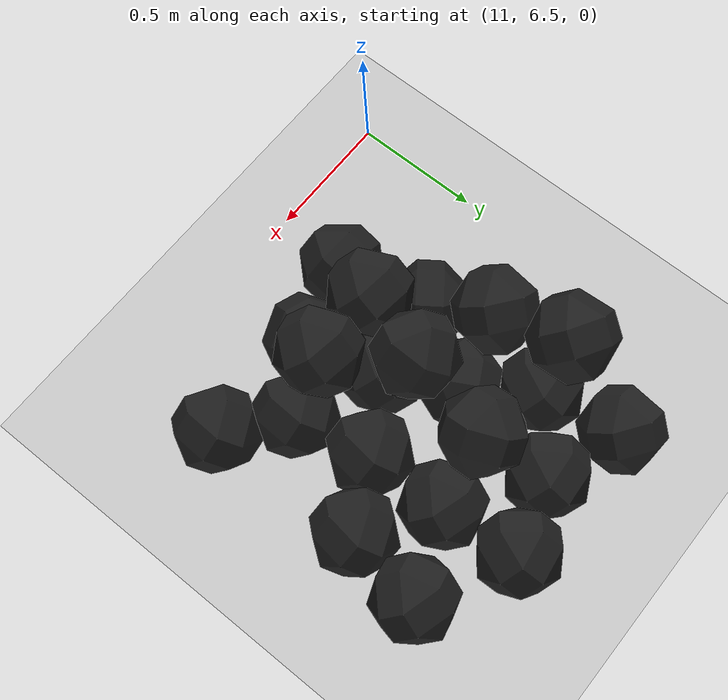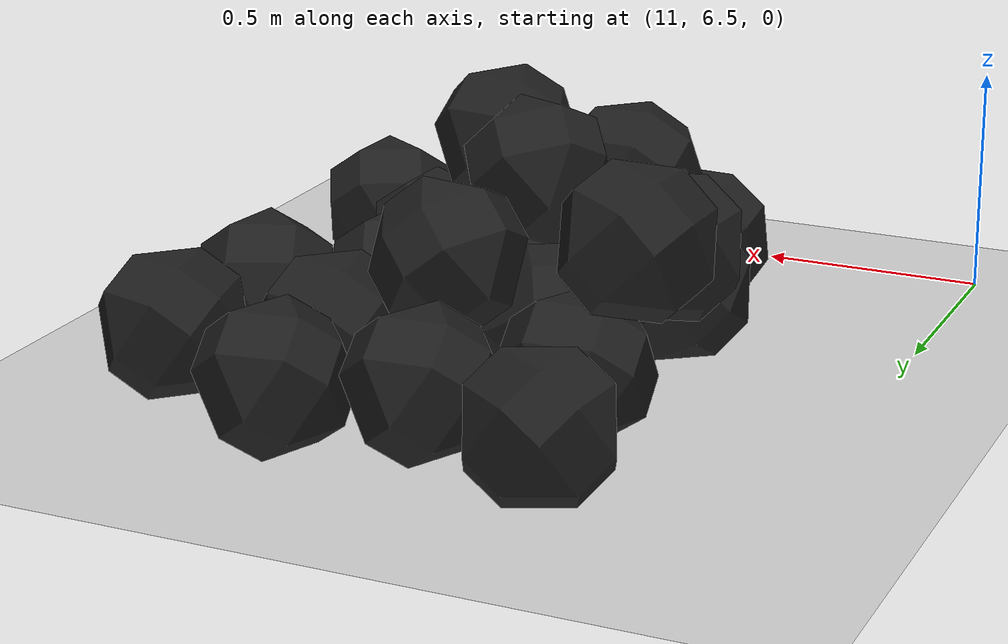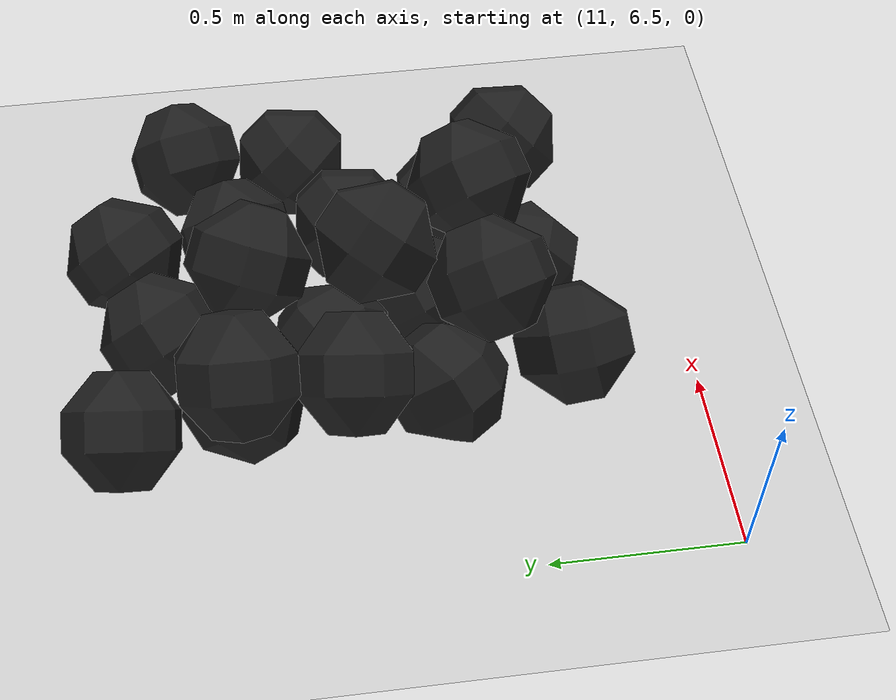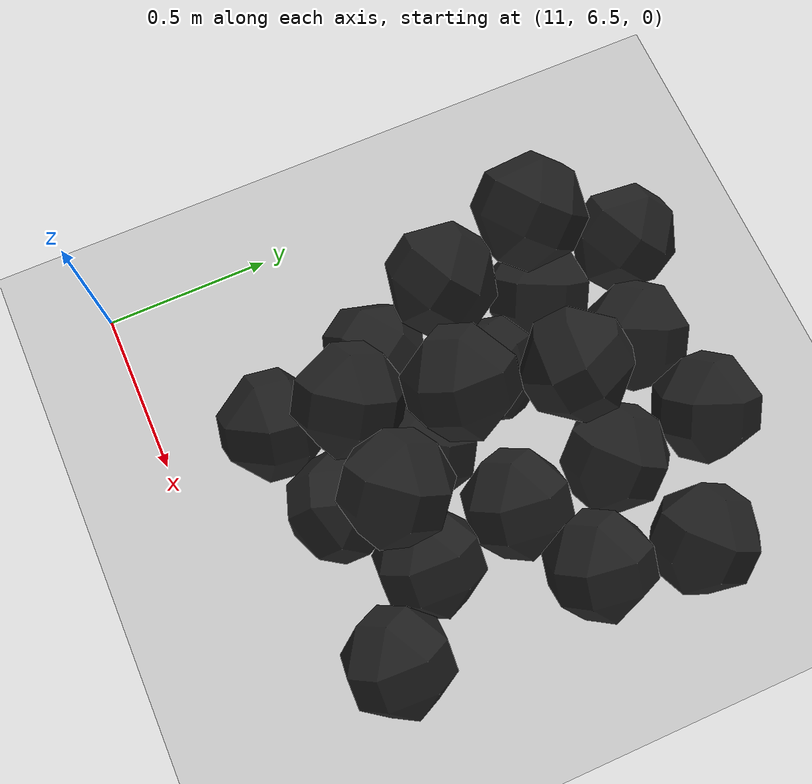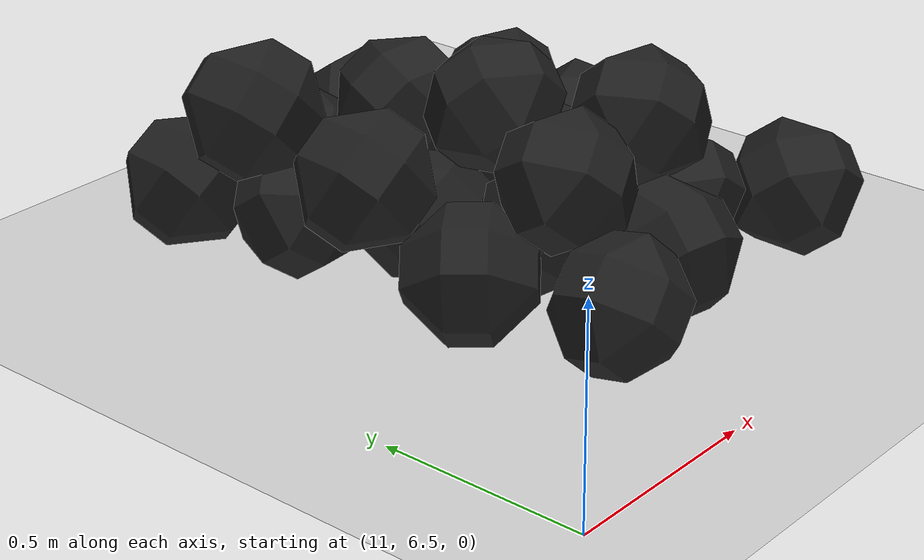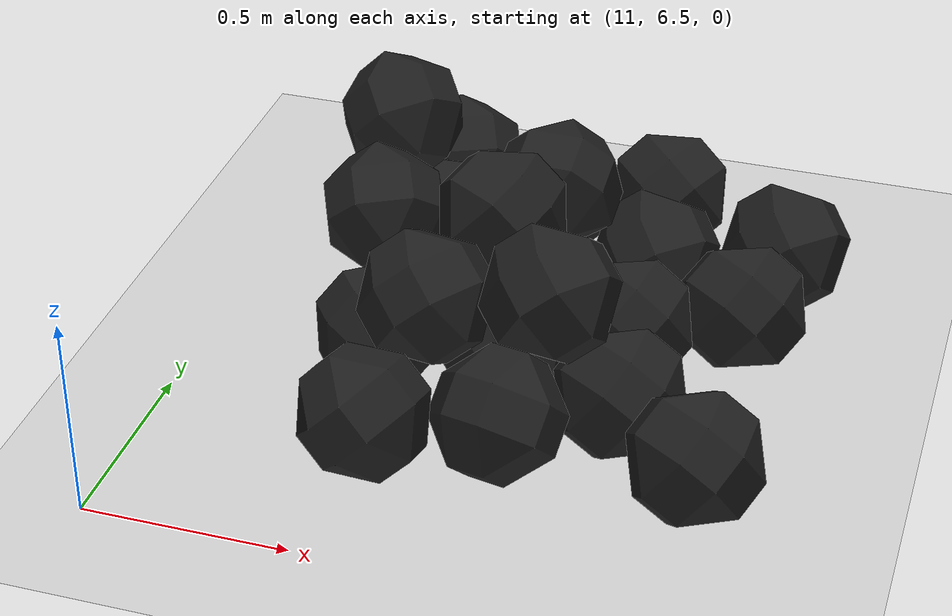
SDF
<sdf version="1.7">
 <world name="default">
  <model name="ground_plane">
   <static>1</static>
   <link name="link">
    <collision name="collision">
     <geometry><plane><normal>0 0 1</normal><size>100 100</size></plane></geometry>
     <surface><friction><ode><mu>100</mu><mu2>50</mu2></ode></friction></surface>
    </collision>
    <visual name="visual">
     <cast_shadows>0</cast_shadows>
     <geometry><plane><normal>0 0 1</normal><size>100 100</size></plane></geometry>
     <material>
      <script><uri>file://media/materials/scripts/gazebo.material</uri><name>Gazebo/Grey</name></script>
     </material>
    </visual>
   </link>
  </model>
  <model name="haoduomiantiaa_2">
   <link name="link_0">
    <inertial>
     <mass>0.2</mass>
     <inertia>
      <ixx>0.166667</ixx>
      <ixy>0</ixy>
      <ixz>0</ixz>
      <iyy>0.166667</iyy>
      <iyz>0</iyz>
      <izz>0.166667</izz>
     </inertia>
    </inertial>
    <visual name="visual">
     <geometry>
      <mesh>
       <uri>/home/lihaoyang/catkin_ws/src/pudong_gazebo/world/stl/haoduomianti.stl</uri>
       <scale>1 1 1</scale>
      </mesh>
     </geometry>
     <material>
      <lighting>1</lighting>
      <script><uri>file://media/materials/scripts/gazebo.material</uri><name>Gazebo/Black</name></script>
      <shader type="pixel"><normal_map>__default__</normal_map></shader>
      <ambient>0.3 0.3 0.3 1</ambient>
      <diffuse>0.7 0.7 0.7 1</diffuse>
      <specular>0.01 0.01 0.01 1</specular>
      <emissive>0 0 0 1</emissive>
     </material>
    </visual>
    <collision name="collision">
     <geometry>
      <mesh>
       <uri>/home/lihaoyang/catkin_ws/src/pudong_gazebo/world/stl/haoduomianti.stl</uri>
       <scale>1 1 1</scale>
      </mesh>
     </geometry>
     <surface>
      <friction>
       <ode><mu>1</mu><mu2>1</mu2><fdir1>0 0 0</fdir1><slip1>0</slip1><slip2>0</slip2></ode>
       <torsional>
        <coefficient>1</coefficient>
        <patch_radius>0</patch_radius>
        <surface_radius>0</surface_radius>
        <use_patch_radius>1</use_patch_radius>
        <ode><slip>0</slip></ode>
       </torsional>
      </friction>
      <bounce><restitution_coefficient>0</restitution_coefficient><threshold>1e+06</threshold></bounce>
      <contact>
       <collide_without_contact>0</collide_without_contact>
       <collide_without_contact_bitmask>1</collide_without_contact_bitmask>
       <collide_bitmask>1</collide_bitmask>
       <ode>
        <soft_cfm>0</soft_cfm>
        <soft_erp>0.2</soft_erp>
        <kp>1e+13</kp>
        <kd>1</kd>
        <max_vel>0.01</max_vel>
        <min_depth>0</min_depth>
       </ode>
       <bullet>
        <split_impulse>1</split_impulse>
        <split_impulse_penetration_threshold>-0.01</split_impulse_penetration_threshold>
        <soft_cfm>0</soft_cfm>
        <soft_erp>0.2</soft_erp>
        <kp>1e+13</kp>
        <kd>1</kd>
       </bullet>
      </contact>
     </surface>
    </collision>
   </link>
   <static>0</static>
   <pose>11.3927 7.29702 -0.074683 1.5149 -0.784614 0.669858</pose>
  </model>
  <model name="haoduomiantiaa_4">
   <link name="link_0">
    <inertial>
     <mass>0.2</mass>
     <inertia>
      <ixx>0.166667</ixx>
      <ixy>0</ixy>
      <ixz>0</ixz>
      <iyy>0.166667</iyy>
      <iyz>0</iyz>
      <izz>0.166667</izz>
     </inertia>
    </inertial>
    <visual name="visual">
     <geometry>
      <mesh>
       <uri>/home/lihaoyang/catkin_ws/src/pudong_gazebo/world/stl/haoduomianti.stl</uri>
       <scale>1 1 1</scale>
      </mesh>
     </geometry>
     <material>
      <lighting>1</lighting>
      <script><uri>file://media/materials/scripts/gazebo.material</uri><name>Gazebo/Black</name></script>
      <shader type="pixel"><normal_map>__default__</normal_map></shader>
      <ambient>0.3 0.3 0.3 1</ambient>
      <diffuse>0.7 0.7 0.7 1</diffuse>
      <specular>0.01 0.01 0.01 1</specular>
      <emissive>0 0 0 1</emissive>
     </material>
    </visual>
    <collision name="collision">
     <geometry>
      <mesh>
       <uri>/home/lihaoyang/catkin_ws/src/pudong_gazebo/world/stl/haoduomianti.stl</uri>
       <scale>1 1 1</scale>
      </mesh>
     </geometry>
     <surface>
      <friction>
       <ode><mu>1</mu><mu2>1</mu2><fdir1>0 0 0</fdir1><slip1>0</slip1><slip2>0</slip2></ode>
       <torsional>
        <coefficient>1</coefficient>
        <patch_radius>0</patch_radius>
        <surface_radius>0</surface_radius>
        <use_patch_radius>1</use_patch_radius>
        <ode><slip>0</slip></ode>
       </torsional>
      </friction>
      <bounce><restitution_coefficient>0</restitution_coefficient><threshold>1e+06</threshold></bounce>
      <contact>
       <collide_without_contact>0</collide_without_contact>
       <collide_without_contact_bitmask>1</collide_without_contact_bitmask>
       <collide_bitmask>1</collide_bitmask>
       <ode>
        <soft_cfm>0</soft_cfm>
        <soft_erp>0.2</soft_erp>
        <kp>1e+13</kp>
        <kd>1</kd>
        <max_vel>0.01</max_vel>
        <min_depth>0</min_depth>
       </ode>
       <bullet>
        <split_impulse>1</split_impulse>
        <split_impulse_penetration_threshold>-0.01</split_impulse_penetration_threshold>
        <soft_cfm>0</soft_cfm>
        <soft_erp>0.2</soft_erp>
        <kp>1e+13</kp>
        <kd>1</kd>
       </bullet>
      </contact>
     </surface>
    </collision>
   </link>
   <static>0</static>
   <pose>11.785 7.21475 -0.115469 0.785389 -0.615474 0.495029</pose>
  </model>
  <model name="haoduomiantiaa_5">
   <link name="link_0">
    <inertial>
     <mass>0.2</mass>
     <inertia>
      <ixx>0.166667</ixx>
      <ixy>0</ixy>
      <ixz>0</ixz>
      <iyy>0.166667</iyy>
      <iyz>0</iyz>
      <izz>0.166667</izz>
     </inertia>
    </inertial>
    <visual name="visual">
     <geometry>
      <mesh>
       <uri>/home/lihaoyang/catkin_ws/src/pudong_gazebo/world/stl/haoduomianti.stl</uri>
       <scale>1 1 1</scale>
      </mesh>
     </geometry>
     <material>
      <lighting>1</lighting>
      <script><uri>file://media/materials/scripts/gazebo.material</uri><name>Gazebo/Black</name></script>
      <shader type="pixel"><normal_map>__default__</normal_map></shader>
      <ambient>0.3 0.3 0.3 1</ambient>
      <diffuse>0.7 0.7 0.7 1</diffuse>
      <specular>0.01 0.01 0.01 1</specular>
      <emissive>0 0 0 1</emissive>
     </material>
    </visual>
    <collision name="collision">
     <geometry>
      <mesh>
       <uri>/home/lihaoyang/catkin_ws/src/pudong_gazebo/world/stl/haoduomianti.stl</uri>
       <scale>1 1 1</scale>
      </mesh>
     </geometry>
     <surface>
      <friction>
       <ode><mu>1</mu><mu2>1</mu2><fdir1>0 0 0</fdir1><slip1>0</slip1><slip2>0</slip2></ode>
       <torsional>
        <coefficient>1</coefficient>
        <patch_radius>0</patch_radius>
        <surface_radius>0</surface_radius>
        <use_patch_radius>1</use_patch_radius>
        <ode><slip>0</slip></ode>
       </torsional>
      </friction>
      <bounce><restitution_coefficient>0</restitution_coefficient><threshold>1e+06</threshold></bounce>
      <contact>
       <collide_without_contact>0</collide_without_contact>
       <collide_without_contact_bitmask>1</collide_without_contact_bitmask>
       <collide_bitmask>1</collide_bitmask>
       <ode>
        <soft_cfm>0</soft_cfm>
        <soft_erp>0.2</soft_erp>
        <kp>1e+13</kp>
        <kd>1</kd>
        <max_vel>0.01</max_vel>
        <min_depth>0</min_depth>
       </ode>
       <bullet>
        <split_impulse>1</split_impulse>
        <split_impulse_penetration_threshold>-0.01</split_impulse_penetration_threshold>
        <soft_cfm>0</soft_cfm>
        <soft_erp>0.2</soft_erp>
        <kp>1e+13</kp>
        <kd>1</kd>
       </bullet>
      </contact>
     </surface>
    </collision>
   </link>
   <static>0</static>
   <pose>11.7319 6.96066 -0.080913 0.149535 -0.779782 -1.98773</pose>
  </model>
  <model name="haoduomiantiaa_10">
   <link name="link_0">
    <inertial>
     <mass>0.2</mass>
     <inertia>
      <ixx>0.166667</ixx>
      <ixy>0</ixy>
      <ixz>0</ixz>
      <iyy>0.166667</iyy>
      <iyz>0</iyz>
      <izz>0.166667</izz>
     </inertia>
    </inertial>
    <visual name="visual">
     <geometry>
      <mesh>
       <uri>/home/lihaoyang/catkin_ws/src/pudong_gazebo/world/stl/haoduomianti.stl</uri>
       <scale>1 1 1</scale>
      </mesh>
     </geometry>
     <material>
      <lighting>1</lighting>
      <script><uri>file://media/materials/scripts/gazebo.material</uri><name>Gazebo/Black</name></script>
      <shader type="pixel"><normal_map>__default__</normal_map></shader>
      <ambient>0.3 0.3 0.3 1</ambient>
      <diffuse>0.7 0.7 0.7 1</diffuse>
      <specular>0.01 0.01 0.01 1</specular>
      <emissive>0 0 0 1</emissive>
     </material>
    </visual>
    <collision name="collision">
     <geometry>
      <mesh>
       <uri>/home/lihaoyang/catkin_ws/src/pudong_gazebo/world/stl/haoduomianti.stl</uri>
       <scale>1 1 1</scale>
      </mesh>
     </geometry>
     <surface>
      <friction>
       <ode><mu>1</mu><mu2>1</mu2><fdir1>0 0 0</fdir1><slip1>0</slip1><slip2>0</slip2></ode>
       <torsional>
        <coefficient>1</coefficient>
        <patch_radius>0</patch_radius>
        <surface_radius>0</surface_radius>
        <use_patch_radius>1</use_patch_radius>
        <ode><slip>0</slip></ode>
       </torsional>
      </friction>
      <bounce><restitution_coefficient>0</restitution_coefficient><threshold>1e+06</threshold></bounce>
      <contact>
       <collide_without_contact>0</collide_without_contact>
       <collide_without_contact_bitmask>1</collide_without_contact_bitmask>
       <collide_bitmask>1</collide_bitmask>
       <ode>
        <soft_cfm>0</soft_cfm>
        <soft_erp>0.2</soft_erp>
        <kp>1e+13</kp>
        <kd>1</kd>
        <max_vel>0.01</max_vel>
        <min_depth>0</min_depth>
       </ode>
       <bullet>
        <split_impulse>1</split_impulse>
        <split_impulse_penetration_threshold>-0.01</split_impulse_penetration_threshold>
        <soft_cfm>0</soft_cfm>
        <soft_erp>0.2</soft_erp>
        <kp>1e+13</kp>
        <kd>1</kd>
       </bullet>
      </contact>
     </surface>
    </collision>
   </link>
   <static>0</static>
   <pose>11.5636 6.93321 -0.092455 1.23758 -0.757109 0.176753</pose>
  </model>
  <model name="haoduomiantiaa_24">
   <link name="link_0">
    <inertial>
     <mass>0.2</mass>
     <inertia>
      <ixx>0.166667</ixx>
      <ixy>0</ixy>
      <ixz>0</ixz>
      <iyy>0.166667</iyy>
      <iyz>0</iyz>
      <izz>0.166667</izz>
     </inertia>
    </inertial>
    <visual name="visual">
     <geometry>
      <mesh>
       <uri>/home/lihaoyang/catkin_ws/src/pudong_gazebo/world/stl/haoduomianti.stl</uri>
       <scale>1 1 1</scale>
      </mesh>
     </geometry>
     <material>
      <lighting>1</lighting>
      <script><uri>file://media/materials/scripts/gazebo.material</uri><name>Gazebo/Black</name></script>
      <shader type="pixel"><normal_map>__default__</normal_map></shader>
      <ambient>0.3 0.3 0.3 1</ambient>
      <diffuse>0.7 0.7 0.7 1</diffuse>
      <specular>0.01 0.01 0.01 1</specular>
      <emissive>0 0 0 1</emissive>
     </material>
    </visual>
    <collision name="collision">
     <geometry>
      <mesh>
       <uri>/home/lihaoyang/catkin_ws/src/pudong_gazebo/world/stl/haoduomianti.stl</uri>
       <scale>1 1 1</scale>
      </mesh>
     </geometry>
     <surface>
      <friction>
       <ode><mu>1</mu><mu2>1</mu2><fdir1>0 0 0</fdir1><slip1>0</slip1><slip2>0</slip2></ode>
       <torsional>
        <coefficient>1</coefficient>
        <patch_radius>0</patch_radius>
        <surface_radius>0</surface_radius>
        <use_patch_radius>1</use_patch_radius>
        <ode><slip>0</slip></ode>
       </torsional>
      </friction>
      <bounce><restitution_coefficient>0</restitution_coefficient><threshold>1e+06</threshold></bounce>
      <contact>
       <collide_without_contact>0</collide_without_contact>
       <collide_without_contact_bitmask>1</collide_without_contact_bitmask>
       <collide_bitmask>1</collide_bitmask>
       <ode>
        <soft_cfm>0</soft_cfm>
        <soft_erp>0.2</soft_erp>
        <kp>1e+13</kp>
        <kd>1</kd>
        <max_vel>0.01</max_vel>
        <min_depth>0</min_depth>
       </ode>
       <bullet>
        <split_impulse>1</split_impulse>
        <split_impulse_penetration_threshold>-0.01</split_impulse_penetration_threshold>
        <soft_cfm>0</soft_cfm>
        <soft_erp>0.2</soft_erp>
        <kp>1e+13</kp>
        <kd>1</kd>
       </bullet>
      </contact>
     </surface>
    </collision>
   </link>
   <static>0</static>
   <pose>12.3166 6.89924 -0.115555 0.785363 -0.615473 -1.08795</pose>
  </model>
  <model name="haoduomiantiaa_27">
   <link name="link_0">
    <inertial>
     <mass>0.2</mass>
     <inertia>
      <ixx>0.166667</ixx>
      <ixy>0</ixy>
      <ixz>0</ixz>
      <iyy>0.166667</iyy>
      <iyz>0</iyz>
      <izz>0.166667</izz>
     </inertia>
    </inertial>
    <visual name="visual">
     <geometry>
      <mesh>
       <uri>/home/lihaoyang/catkin_ws/src/pudong_gazebo/world/stl/haoduomianti.stl</uri>
       <scale>1 1 1</scale>
      </mesh>
     </geometry>
     <material>
      <lighting>1</lighting>
      <script><uri>file://media/materials/scripts/gazebo.material</uri><name>Gazebo/Black</name></script>
      <shader type="pixel"><normal_map>__default__</normal_map></shader>
      <ambient>0.3 0.3 0.3 1</ambient>
      <diffuse>0.7 0.7 0.7 1</diffuse>
      <specular>0.01 0.01 0.01 1</specular>
      <emissive>0 0 0 1</emissive>
     </material>
    </visual>
    <collision name="collision">
     <geometry>
      <mesh>
       <uri>/home/lihaoyang/catkin_ws/src/pudong_gazebo/world/stl/haoduomianti.stl</uri>
       <scale>1 1 1</scale>
      </mesh>
     </geometry>
     <surface>
      <friction>
       <ode><mu>1</mu><mu2>1</mu2><fdir1>0 0 0</fdir1><slip1>0</slip1><slip2>0</slip2></ode>
       <torsional>
        <coefficient>1</coefficient>
        <patch_radius>0</patch_radius>
        <surface_radius>0</surface_radius>
        <use_patch_radius>1</use_patch_radius>
        <ode><slip>0</slip></ode>
       </torsional>
      </friction>
      <bounce><restitution_coefficient>0</restitution_coefficient><threshold>1e+06</threshold></bounce>
      <contact>
       <collide_without_contact>0</collide_without_contact>
       <collide_without_contact_bitmask>1</collide_without_contact_bitmask>
       <collide_bitmask>1</collide_bitmask>
       <ode>
        <soft_cfm>0</soft_cfm>
        <soft_erp>0.2</soft_erp>
        <kp>1e+13</kp>
        <kd>1</kd>
        <max_vel>0.01</max_vel>
        <min_depth>0</min_depth>
       </ode>
       <bullet>
        <split_impulse>1</split_impulse>
        <split_impulse_penetration_threshold>-0.01</split_impulse_penetration_threshold>
        <soft_cfm>0</soft_cfm>
        <soft_erp>0.2</soft_erp>
        <kp>1e+13</kp>
        <kd>1</kd>
       </bullet>
      </contact>
     </surface>
    </collision>
   </link>
   <static>0</static>
   <pose>11.5146 7.3905 -0.071171 -0.000145 -0.785317 -1.07567</pose>
  </model>
  <model name="haoduomiantiaa_29">
   <link name="link_0">
    <inertial>
     <mass>0.2</mass>
     <inertia>
      <ixx>0.166667</ixx>
      <ixy>0</ixy>
      <ixz>0</ixz>
      <iyy>0.166667</iyy>
      <iyz>0</iyz>
      <izz>0.166667</izz>
     </inertia>
    </inertial>
    <visual name="visual">
     <geometry>
      <mesh>
       <uri>/home/lihaoyang/catkin_ws/src/pudong_gazebo/world/stl/haoduomianti.stl</uri>
       <scale>1 1 1</scale>
      </mesh>
     </geometry>
     <material>
      <lighting>1</lighting>
      <script><uri>file://media/materials/scripts/gazebo.material</uri><name>Gazebo/Black</name></script>
      <shader type="pixel"><normal_map>__default__</normal_map></shader>
      <ambient>0.3 0.3 0.3 1</ambient>
      <diffuse>0.7 0.7 0.7 1</diffuse>
      <specular>0.01 0.01 0.01 1</specular>
      <emissive>0 0 0 1</emissive>
     </material>
    </visual>
    <collision name="collision">
     <geometry>
      <mesh>
       <uri>/home/lihaoyang/catkin_ws/src/pudong_gazebo/world/stl/haoduomianti.stl</uri>
       <scale>1 1 1</scale>
      </mesh>
     </geometry>
     <surface>
      <friction>
       <ode><mu>1</mu><mu2>1</mu2><fdir1>0 0 0</fdir1><slip1>0</slip1><slip2>0</slip2></ode>
       <torsional>
        <coefficient>1</coefficient>
        <patch_radius>0</patch_radius>
        <surface_radius>0</surface_radius>
        <use_patch_radius>1</use_patch_radius>
        <ode><slip>0</slip></ode>
       </torsional>
      </friction>
      <bounce><restitution_coefficient>0</restitution_coefficient><threshold>1e+06</threshold></bounce>
      <contact>
       <collide_without_contact>0</collide_without_contact>
       <collide_without_contact_bitmask>1</collide_without_contact_bitmask>
       <collide_bitmask>1</collide_bitmask>
       <ode>
        <soft_cfm>0</soft_cfm>
        <soft_erp>0.2</soft_erp>
        <kp>1e+13</kp>
        <kd>1</kd>
        <max_vel>0.01</max_vel>
        <min_depth>0</min_depth>
       </ode>
       <bullet>
        <split_impulse>1</split_impulse>
        <split_impulse_penetration_threshold>-0.01</split_impulse_penetration_threshold>
        <soft_cfm>0</soft_cfm>
        <soft_erp>0.2</soft_erp>
        <kp>1e+13</kp>
        <kd>1</kd>
       </bullet>
      </contact>
     </surface>
    </collision>
   </link>
   <static>0</static>
   <pose>11.4312 8.01453 -0.115506 0.78538 -0.615458 1.9979</pose>
  </model>
  <model name="haoduomiantiaa_44">
   <link name="link_0">
    <inertial>
     <mass>0.2</mass>
     <inertia>
      <ixx>0.166667</ixx>
      <ixy>0</ixy>
      <ixz>0</ixz>
      <iyy>0.166667</iyy>
      <iyz>0</iyz>
      <izz>0.166667</izz>
     </inertia>
    </inertial>
    <visual name="visual">
     <geometry>
      <mesh>
       <uri>/home/lihaoyang/catkin_ws/src/pudong_gazebo/world/stl/haoduomianti.stl</uri>
       <scale>1 1 1</scale>
      </mesh>
     </geometry>
     <material>
      <lighting>1</lighting>
      <script><uri>file://media/materials/scripts/gazebo.material</uri><name>Gazebo/Black</name></script>
      <shader type="pixel"><normal_map>__default__</normal_map></shader>
      <ambient>0.3 0.3 0.3 1</ambient>
      <diffuse>0.7 0.7 0.7 1</diffuse>
      <specular>0.01 0.01 0.01 1</specular>
      <emissive>0 0 0 1</emissive>
     </material>
    </visual>
    <collision name="collision">
     <geometry>
      <mesh>
       <uri>/home/lihaoyang/catkin_ws/src/pudong_gazebo/world/stl/haoduomianti.stl</uri>
       <scale>1 1 1</scale>
      </mesh>
     </geometry>
     <surface>
      <friction>
       <ode><mu>1</mu><mu2>1</mu2><fdir1>0 0 0</fdir1><slip1>0</slip1><slip2>0</slip2></ode>
       <torsional>
        <coefficient>1</coefficient>
        <patch_radius>0</patch_radius>
        <surface_radius>0</surface_radius>
        <use_patch_radius>1</use_patch_radius>
        <ode><slip>0</slip></ode>
       </torsional>
      </friction>
      <bounce><restitution_coefficient>0</restitution_coefficient><threshold>1e+06</threshold></bounce>
      <contact>
       <collide_without_contact>0</collide_without_contact>
       <collide_without_contact_bitmask>1</collide_without_contact_bitmask>
       <collide_bitmask>1</collide_bitmask>
       <ode>
        <soft_cfm>0</soft_cfm>
        <soft_erp>0.2</soft_erp>
        <kp>1e+13</kp>
        <kd>1</kd>
        <max_vel>0.01</max_vel>
        <min_depth>0</min_depth>
       </ode>
       <bullet>
        <split_impulse>1</split_impulse>
        <split_impulse_penetration_threshold>-0.01</split_impulse_penetration_threshold>
        <soft_cfm>0</soft_cfm>
        <soft_erp>0.2</soft_erp>
        <kp>1e+13</kp>
        <kd>1</kd>
       </bullet>
      </contact>
     </surface>
    </collision>
   </link>
   <static>0</static>
   <pose>12.2978 7.51171 -0.115468 0.785382 -0.615463 3.00415</pose>
  </model>
  <model name="haoduomiantiaa_50">
   <link name="link_0">
    <inertial>
     <mass>0.2</mass>
     <inertia>
      <ixx>0.166667</ixx>
      <ixy>0</ixy>
      <ixz>0</ixz>
      <iyy>0.166667</iyy>
      <iyz>0</iyz>
      <izz>0.166667</izz>
     </inertia>
    </inertial>
    <visual name="visual">
     <geometry>
      <mesh>
       <uri>/home/lihaoyang/catkin_ws/src/pudong_gazebo/world/stl/haoduomianti.stl</uri>
       <scale>1 1 1</scale>
      </mesh>
     </geometry>
     <material>
      <lighting>1</lighting>
      <script><uri>file://media/materials/scripts/gazebo.material</uri><name>Gazebo/Black</name></script>
      <shader type="pixel"><normal_map>__default__</normal_map></shader>
      <ambient>0.3 0.3 0.3 1</ambient>
      <diffuse>0.7 0.7 0.7 1</diffuse>
      <specular>0.01 0.01 0.01 1</specular>
      <emissive>0 0 0 1</emissive>
     </material>
    </visual>
    <collision name="collision">
     <geometry>
      <mesh>
       <uri>/home/lihaoyang/catkin_ws/src/pudong_gazebo/world/stl/haoduomianti.stl</uri>
       <scale>1 1 1</scale>
      </mesh>
     </geometry>
     <surface>
      <friction>
       <ode><mu>1</mu><mu2>1</mu2><fdir1>0 0 0</fdir1><slip1>0</slip1><slip2>0</slip2></ode>
       <torsional>
        <coefficient>1</coefficient>
        <patch_radius>0</patch_radius>
        <surface_radius>0</surface_radius>
        <use_patch_radius>1</use_patch_radius>
        <ode><slip>0</slip></ode>
       </torsional>
      </friction>
      <bounce><restitution_coefficient>0</restitution_coefficient><threshold>1e+06</threshold></bounce>
      <contact>
       <collide_without_contact>0</collide_without_contact>
       <collide_without_contact_bitmask>1</collide_without_contact_bitmask>
       <collide_bitmask>1</collide_bitmask>
       <ode>
        <soft_cfm>0</soft_cfm>
        <soft_erp>0.2</soft_erp>
        <kp>1e+13</kp>
        <kd>1</kd>
        <max_vel>0.01</max_vel>
        <min_depth>0</min_depth>
       </ode>
       <bullet>
        <split_impulse>1</split_impulse>
        <split_impulse_penetration_threshold>-0.01</split_impulse_penetration_threshold>
        <soft_cfm>0</soft_cfm>
        <soft_erp>0.2</soft_erp>
        <kp>1e+13</kp>
        <kd>1</kd>
       </bullet>
      </contact>
     </surface>
    </collision>
   </link>
   <static>0</static>
   <pose>11.7967 7.61686 0.067364 0.743989 -0.446689 1.50528</pose>
  </model>
  <model name="haoduomiantiaa_51">
   <link name="link_0">
    <inertial>
     <mass>0.2</mass>
     <inertia>
      <ixx>0.166667</ixx>
      <ixy>0</ixy>
      <ixz>0</ixz>
      <iyy>0.166667</iyy>
      <iyz>0</iyz>
      <izz>0.166667</izz>
     </inertia>
    </inertial>
    <visual name="visual">
     <geometry>
      <mesh>
       <uri>/home/lihaoyang/catkin_ws/src/pudong_gazebo/world/stl/haoduomianti.stl</uri>
       <scale>1 1 1</scale>
      </mesh>
     </geometry>
     <material>
      <lighting>1</lighting>
      <script><uri>file://media/materials/scripts/gazebo.material</uri><name>Gazebo/Black</name></script>
      <shader type="pixel"><normal_map>__default__</normal_map></shader>
      <ambient>0.3 0.3 0.3 1</ambient>
      <diffuse>0.7 0.7 0.7 1</diffuse>
      <specular>0.01 0.01 0.01 1</specular>
      <emissive>0 0 0 1</emissive>
     </material>
    </visual>
    <collision name="collision">
     <geometry>
      <mesh>
       <uri>/home/lihaoyang/catkin_ws/src/pudong_gazebo/world/stl/haoduomianti.stl</uri>
       <scale>1 1 1</scale>
      </mesh>
     </geometry>
     <surface>
      <friction>
       <ode><mu>1</mu><mu2>1</mu2><fdir1>0 0 0</fdir1><slip1>0</slip1><slip2>0</slip2></ode>
       <torsional>
        <coefficient>1</coefficient>
        <patch_radius>0</patch_radius>
        <surface_radius>0</surface_radius>
        <use_patch_radius>1</use_patch_radius>
        <ode><slip>0</slip></ode>
       </torsional>
      </friction>
      <bounce><restitution_coefficient>0</restitution_coefficient><threshold>1e+06</threshold></bounce>
      <contact>
       <collide_without_contact>0</collide_without_contact>
       <collide_without_contact_bitmask>1</collide_without_contact_bitmask>
       <collide_bitmask>1</collide_bitmask>
       <ode>
        <soft_cfm>0</soft_cfm>
        <soft_erp>0.2</soft_erp>
        <kp>1e+13</kp>
        <kd>1</kd>
        <max_vel>0.01</max_vel>
        <min_depth>0</min_depth>
       </ode>
       <bullet>
        <split_impulse>1</split_impulse>
        <split_impulse_penetration_threshold>-0.01</split_impulse_penetration_threshold>
        <soft_cfm>0</soft_cfm>
        <soft_erp>0.2</soft_erp>
        <kp>1e+13</kp>
        <kd>1</kd>
       </bullet>
      </contact>
     </surface>
    </collision>
   </link>
   <static>0</static>
   <pose>12.0989 7.084 -0.115524 0.785424 -0.615357 1.00639</pose>
  </model>
  <model name="haoduomiantiaa_55">
   <link name="link_0">
    <inertial>
     <mass>0.2</mass>
     <inertia>
      <ixx>0.166667</ixx>
      <ixy>0</ixy>
      <ixz>0</ixz>
      <iyy>0.166667</iyy>
      <iyz>0</iyz>
      <izz>0.166667</izz>
     </inertia>
    </inertial>
    <visual name="visual">
     <geometry>
      <mesh>
       <uri>/home/lihaoyang/catkin_ws/src/pudong_gazebo/world/stl/haoduomianti.stl</uri>
       <scale>1 1 1</scale>
      </mesh>
     </geometry>
     <material>
      <lighting>1</lighting>
      <script><uri>file://media/materials/scripts/gazebo.material</uri><name>Gazebo/Black</name></script>
      <shader type="pixel"><normal_map>__default__</normal_map></shader>
      <ambient>0.3 0.3 0.3 1</ambient>
      <diffuse>0.7 0.7 0.7 1</diffuse>
      <specular>0.01 0.01 0.01 1</specular>
      <emissive>0 0 0 1</emissive>
     </material>
    </visual>
    <collision name="collision">
     <geometry>
      <mesh>
       <uri>/home/lihaoyang/catkin_ws/src/pudong_gazebo/world/stl/haoduomianti.stl</uri>
       <scale>1 1 1</scale>
      </mesh>
     </geometry>
     <surface>
      <friction>
       <ode><mu>1</mu><mu2>1</mu2><fdir1>0 0 0</fdir1><slip1>0</slip1><slip2>0</slip2></ode>
       <torsional>
        <coefficient>1</coefficient>
        <patch_radius>0</patch_radius>
        <surface_radius>0</surface_radius>
        <use_patch_radius>1</use_patch_radius>
        <ode><slip>0</slip></ode>
       </torsional>
      </friction>
      <bounce><restitution_coefficient>0</restitution_coefficient><threshold>1e+06</threshold></bounce>
      <contact>
       <collide_without_contact>0</collide_without_contact>
       <collide_without_contact_bitmask>1</collide_without_contact_bitmask>
       <collide_bitmask>1</collide_bitmask>
       <ode>
        <soft_cfm>0</soft_cfm>
        <soft_erp>0.2</soft_erp>
        <kp>1e+13</kp>
        <kd>1</kd>
        <max_vel>0.01</max_vel>
        <min_depth>0</min_depth>
       </ode>
       <bullet>
        <split_impulse>1</split_impulse>
        <split_impulse_penetration_threshold>-0.01</split_impulse_penetration_threshold>
        <soft_cfm>0</soft_cfm>
        <soft_erp>0.2</soft_erp>
        <kp>1e+13</kp>
        <kd>1</kd>
       </bullet>
      </contact>
     </surface>
    </collision>
   </link>
   <static>0</static>
   <pose>12.3467 7.81097 -0.11547 0.785401 -0.615478 2.33385</pose>
  </model>
  <model name="haoduomiantiaa_62">
   <link name="link_0">
    <inertial>
     <mass>0.2</mass>
     <inertia>
      <ixx>0.166667</ixx>
      <ixy>0</ixy>
      <ixz>0</ixz>
      <iyy>0.166667</iyy>
      <iyz>0</iyz>
      <izz>0.166667</izz>
     </inertia>
    </inertial>
    <visual name="visual">
     <geometry>
      <mesh>
       <uri>/home/lihaoyang/catkin_ws/src/pudong_gazebo/world/stl/haoduomianti.stl</uri>
       <scale>1 1 1</scale>
      </mesh>
     </geometry>
     <material>
      <lighting>1</lighting>
      <script><uri>file://media/materials/scripts/gazebo.material</uri><name>Gazebo/Black</name></script>
      <shader type="pixel"><normal_map>__default__</normal_map></shader>
      <ambient>0.3 0.3 0.3 1</ambient>
      <diffuse>0.7 0.7 0.7 1</diffuse>
      <specular>0.01 0.01 0.01 1</specular>
      <emissive>0 0 0 1</emissive>
     </material>
    </visual>
    <collision name="collision">
     <geometry>
      <mesh>
       <uri>/home/lihaoyang/catkin_ws/src/pudong_gazebo/world/stl/haoduomianti.stl</uri>
       <scale>1 1 1</scale>
      </mesh>
     </geometry>
     <surface>
      <friction>
       <ode><mu>1</mu><mu2>1</mu2><fdir1>0 0 0</fdir1><slip1>0</slip1><slip2>0</slip2></ode>
       <torsional>
        <coefficient>1</coefficient>
        <patch_radius>0</patch_radius>
        <surface_radius>0</surface_radius>
        <use_patch_radius>1</use_patch_radius>
        <ode><slip>0</slip></ode>
       </torsional>
      </friction>
      <bounce><restitution_coefficient>0</restitution_coefficient><threshold>1e+06</threshold></bounce>
      <contact>
       <collide_without_contact>0</collide_without_contact>
       <collide_without_contact_bitmask>1</collide_without_contact_bitmask>
       <collide_bitmask>1</collide_bitmask>
       <ode>
        <soft_cfm>0</soft_cfm>
        <soft_erp>0.2</soft_erp>
        <kp>1e+13</kp>
        <kd>1</kd>
        <max_vel>0.01</max_vel>
        <min_depth>0</min_depth>
       </ode>
       <bullet>
        <split_impulse>1</split_impulse>
        <split_impulse_penetration_threshold>-0.01</split_impulse_penetration_threshold>
        <soft_cfm>0</soft_cfm>
        <soft_erp>0.2</soft_erp>
        <kp>1e+13</kp>
        <kd>1</kd>
       </bullet>
      </contact>
     </surface>
    </collision>
   </link>
   <static>0</static>
   <pose>12.0364 7.68781 -0.115479 0.785393 -0.615467 -1.87087</pose>
  </model>
  <model name="haoduomiantiaa_76">
   <link name="link_0">
    <inertial>
     <mass>0.2</mass>
     <inertia>
      <ixx>0.166667</ixx>
      <ixy>0</ixy>
      <ixz>0</ixz>
      <iyy>0.166667</iyy>
      <iyz>0</iyz>
      <izz>0.166667</izz>
     </inertia>
    </inertial>
    <visual name="visual">
     <geometry>
      <mesh>
       <uri>/home/lihaoyang/catkin_ws/src/pudong_gazebo/world/stl/haoduomianti.stl</uri>
       <scale>1 1 1</scale>
      </mesh>
     </geometry>
     <material>
      <lighting>1</lighting>
      <script><uri>file://media/materials/scripts/gazebo.material</uri><name>Gazebo/Black</name></script>
      <shader type="pixel"><normal_map>__default__</normal_map></shader>
      <ambient>0.3 0.3 0.3 1</ambient>
      <diffuse>0.7 0.7 0.7 1</diffuse>
      <specular>0.01 0.01 0.01 1</specular>
      <emissive>0 0 0 1</emissive>
     </material>
    </visual>
    <collision name="collision">
     <geometry>
      <mesh>
       <uri>/home/lihaoyang/catkin_ws/src/pudong_gazebo/world/stl/haoduomianti.stl</uri>
       <scale>1 1 1</scale>
      </mesh>
     </geometry>
     <surface>
      <friction>
       <ode><mu>1</mu><mu2>1</mu2><fdir1>0 0 0</fdir1><slip1>0</slip1><slip2>0</slip2></ode>
       <torsional>
        <coefficient>1</coefficient>
        <patch_radius>0</patch_radius>
        <surface_radius>0</surface_radius>
        <use_patch_radius>1</use_patch_radius>
        <ode><slip>0</slip></ode>
       </torsional>
      </friction>
      <bounce><restitution_coefficient>0</restitution_coefficient><threshold>1e+06</threshold></bounce>
      <contact>
       <collide_without_contact>0</collide_without_contact>
       <collide_without_contact_bitmask>1</collide_without_contact_bitmask>
       <collide_bitmask>1</collide_bitmask>
       <ode>
        <soft_cfm>0</soft_cfm>
        <soft_erp>0.2</soft_erp>
        <kp>1e+13</kp>
        <kd>1</kd>
        <max_vel>0.01</max_vel>
        <min_depth>0</min_depth>
       </ode>
       <bullet>
        <split_impulse>1</split_impulse>
        <split_impulse_penetration_threshold>-0.01</split_impulse_penetration_threshold>
        <soft_cfm>0</soft_cfm>
        <soft_erp>0.2</soft_erp>
        <kp>1e+13</kp>
        <kd>1</kd>
       </bullet>
      </contact>
     </surface>
    </collision>
   </link>
   <static>0</static>
   <pose>12.0046 7.99257 -0.11548 0.785396 -0.615481 -1.42626</pose>
  </model>
  <model name="haoduomiantiaa_80">
   <link name="link_0">
    <inertial>
     <mass>0.2</mass>
     <inertia>
      <ixx>0.166667</ixx>
      <ixy>0</ixy>
      <ixz>0</ixz>
      <iyy>0.166667</iyy>
      <iyz>0</iyz>
      <izz>0.166667</izz>
     </inertia>
    </inertial>
    <visual name="visual">
     <geometry>
      <mesh>
       <uri>/home/lihaoyang/catkin_ws/src/pudong_gazebo/world/stl/haoduomianti.stl</uri>
       <scale>1 1 1</scale>
      </mesh>
     </geometry>
     <material>
      <lighting>1</lighting>
      <script><uri>file://media/materials/scripts/gazebo.material</uri><name>Gazebo/Black</name></script>
      <shader type="pixel"><normal_map>__default__</normal_map></shader>
      <ambient>0.3 0.3 0.3 1</ambient>
      <diffuse>0.7 0.7 0.7 1</diffuse>
      <specular>0.01 0.01 0.01 1</specular>
      <emissive>0 0 0 1</emissive>
     </material>
    </visual>
    <collision name="collision">
     <geometry>
      <mesh>
       <uri>/home/lihaoyang/catkin_ws/src/pudong_gazebo/world/stl/haoduomianti.stl</uri>
       <scale>1 1 1</scale>
      </mesh>
     </geometry>
     <surface>
      <friction>
       <ode><mu>1</mu><mu2>1</mu2><fdir1>0 0 0</fdir1><slip1>0</slip1><slip2>0</slip2></ode>
       <torsional>
        <coefficient>1</coefficient>
        <patch_radius>0</patch_radius>
        <surface_radius>0</surface_radius>
        <use_patch_radius>1</use_patch_radius>
        <ode><slip>0</slip></ode>
       </torsional>
      </friction>
      <bounce><restitution_coefficient>0</restitution_coefficient><threshold>1e+06</threshold></bounce>
      <contact>
       <collide_without_contact>0</collide_without_contact>
       <collide_without_contact_bitmask>1</collide_without_contact_bitmask>
       <collide_bitmask>1</collide_bitmask>
       <ode>
        <soft_cfm>0</soft_cfm>
        <soft_erp>0.2</soft_erp>
        <kp>1e+13</kp>
        <kd>1</kd>
        <max_vel>0.01</max_vel>
        <min_depth>0</min_depth>
       </ode>
       <bullet>
        <split_impulse>1</split_impulse>
        <split_impulse_penetration_threshold>-0.01</split_impulse_penetration_threshold>
        <soft_cfm>0</soft_cfm>
        <soft_erp>0.2</soft_erp>
        <kp>1e+13</kp>
        <kd>1</kd>
       </bullet>
      </contact>
     </surface>
    </collision>
   </link>
   <static>0</static>
   <pose>11.9285 7.05578 0.140784 0.83672 -0.597893 2.43287</pose>
  </model>
  <model name="haoduomiantiaa_83">
   <link name="link_0">
    <inertial>
     <mass>0.2</mass>
     <inertia>
      <ixx>0.166667</ixx>
      <ixy>0</ixy>
      <ixz>0</ixz>
      <iyy>0.166667</iyy>
      <iyz>0</iyz>
      <izz>0.166667</izz>
     </inertia>
    </inertial>
    <visual name="visual">
     <geometry>
      <mesh>
       <uri>/home/lihaoyang/catkin_ws/src/pudong_gazebo/world/stl/haoduomianti.stl</uri>
       <scale>1 1 1</scale>
      </mesh>
     </geometry>
     <material>
      <lighting>1</lighting>
      <script><uri>file://media/materials/scripts/gazebo.material</uri><name>Gazebo/Black</name></script>
      <shader type="pixel"><normal_map>__default__</normal_map></shader>
      <ambient>0.3 0.3 0.3 1</ambient>
      <diffuse>0.7 0.7 0.7 1</diffuse>
      <specular>0.01 0.01 0.01 1</specular>
      <emissive>0 0 0 1</emissive>
     </material>
    </visual>
    <collision name="collision">
     <geometry>
      <mesh>
       <uri>/home/lihaoyang/catkin_ws/src/pudong_gazebo/world/stl/haoduomianti.stl</uri>
       <scale>1 1 1</scale>
      </mesh>
     </geometry>
     <surface>
      <friction>
       <ode><mu>1</mu><mu2>1</mu2><fdir1>0 0 0</fdir1><slip1>0</slip1><slip2>0</slip2></ode>
       <torsional>
        <coefficient>1</coefficient>
        <patch_radius>0</patch_radius>
        <surface_radius>0</surface_radius>
        <use_patch_radius>1</use_patch_radius>
        <ode><slip>0</slip></ode>
       </torsional>
      </friction>
      <bounce><restitution_coefficient>0</restitution_coefficient><threshold>1e+06</threshold></bounce>
      <contact>
       <collide_without_contact>0</collide_without_contact>
       <collide_without_contact_bitmask>1</collide_without_contact_bitmask>
       <collide_bitmask>1</collide_bitmask>
       <ode>
        <soft_cfm>0</soft_cfm>
        <soft_erp>0.2</soft_erp>
        <kp>1e+13</kp>
        <kd>1</kd>
        <max_vel>0.01</max_vel>
        <min_depth>0</min_depth>
       </ode>
       <bullet>
        <split_impulse>1</split_impulse>
        <split_impulse_penetration_threshold>-0.01</split_impulse_penetration_threshold>
        <soft_cfm>0</soft_cfm>
        <soft_erp>0.2</soft_erp>
        <kp>1e+13</kp>
        <kd>1</kd>
       </bullet>
      </contact>
     </surface>
    </collision>
   </link>
   <static>0</static>
   <pose>11.6361 7.06921 0.08738 0.731258 -0.672708 2.52314</pose>
  </model>
  <model name="haoduomiantiaa_86">
   <link name="link_0">
    <inertial>
     <mass>0.2</mass>
     <inertia>
      <ixx>0.166667</ixx>
      <ixy>0</ixy>
      <ixz>0</ixz>
      <iyy>0.166667</iyy>
      <iyz>0</iyz>
      <izz>0.166667</izz>
     </inertia>
    </inertial>
    <visual name="visual">
     <geometry>
      <mesh>
       <uri>/home/lihaoyang/catkin_ws/src/pudong_gazebo/world/stl/haoduomianti.stl</uri>
       <scale>1 1 1</scale>
      </mesh>
     </geometry>
     <material>
      <lighting>1</lighting>
      <script><uri>file://media/materials/scripts/gazebo.material</uri><name>Gazebo/Black</name></script>
      <shader type="pixel"><normal_map>__default__</normal_map></shader>
      <ambient>0.3 0.3 0.3 1</ambient>
      <diffuse>0.7 0.7 0.7 1</diffuse>
      <specular>0.01 0.01 0.01 1</specular>
      <emissive>0 0 0 1</emissive>
     </material>
    </visual>
    <collision name="collision">
     <geometry>
      <mesh>
       <uri>/home/lihaoyang/catkin_ws/src/pudong_gazebo/world/stl/haoduomianti.stl</uri>
       <scale>1 1 1</scale>
      </mesh>
     </geometry>
     <surface>
      <friction>
       <ode><mu>1</mu><mu2>1</mu2><fdir1>0 0 0</fdir1><slip1>0</slip1><slip2>0</slip2></ode>
       <torsional>
        <coefficient>1</coefficient>
        <patch_radius>0</patch_radius>
        <surface_radius>0</surface_radius>
        <use_patch_radius>1</use_patch_radius>
        <ode><slip>0</slip></ode>
       </torsional>
      </friction>
      <bounce><restitution_coefficient>0</restitution_coefficient><threshold>1e+06</threshold></bounce>
      <contact>
       <collide_without_contact>0</collide_without_contact>
       <collide_without_contact_bitmask>1</collide_without_contact_bitmask>
       <collide_bitmask>1</collide_bitmask>
       <ode>
        <soft_cfm>0</soft_cfm>
        <soft_erp>0.2</soft_erp>
        <kp>1e+13</kp>
        <kd>1</kd>
        <max_vel>0.01</max_vel>
        <min_depth>0</min_depth>
       </ode>
       <bullet>
        <split_impulse>1</split_impulse>
        <split_impulse_penetration_threshold>-0.01</split_impulse_penetration_threshold>
        <soft_cfm>0</soft_cfm>
        <soft_erp>0.2</soft_erp>
        <kp>1e+13</kp>
        <kd>1</kd>
       </bullet>
      </contact>
     </surface>
    </collision>
   </link>
   <static>0</static>
   <pose>11.4248 7.41974 0.061609 0.765257 -0.68326 -0.10015</pose>
  </model>
  <model name="haoduomiantiaa_89">
   <link name="link_0">
    <inertial>
     <mass>0.2</mass>
     <inertia>
      <ixx>0.166667</ixx>
      <ixy>0</ixy>
      <ixz>0</ixz>
      <iyy>0.166667</iyy>
      <iyz>0</iyz>
      <izz>0.166667</izz>
     </inertia>
    </inertial>
    <visual name="visual">
     <geometry>
      <mesh>
       <uri>/home/lihaoyang/catkin_ws/src/pudong_gazebo/world/stl/haoduomianti.stl</uri>
       <scale>1 1 1</scale>
      </mesh>
     </geometry>
     <material>
      <lighting>1</lighting>
      <script><uri>file://media/materials/scripts/gazebo.material</uri><name>Gazebo/Black</name></script>
      <shader type="pixel"><normal_map>__default__</normal_map></shader>
      <ambient>0.3 0.3 0.3 1</ambient>
      <diffuse>0.7 0.7 0.7 1</diffuse>
      <specular>0.01 0.01 0.01 1</specular>
      <emissive>0 0 0 1</emissive>
     </material>
    </visual>
    <collision name="collision">
     <geometry>
      <mesh>
       <uri>/home/lihaoyang/catkin_ws/src/pudong_gazebo/world/stl/haoduomianti.stl</uri>
       <scale>1 1 1</scale>
      </mesh>
     </geometry>
     <surface>
      <friction>
       <ode><mu>1</mu><mu2>1</mu2><fdir1>0 0 0</fdir1><slip1>0</slip1><slip2>0</slip2></ode>
       <torsional>
        <coefficient>1</coefficient>
        <patch_radius>0</patch_radius>
        <surface_radius>0</surface_radius>
        <use_patch_radius>1</use_patch_radius>
        <ode><slip>0</slip></ode>
       </torsional>
      </friction>
      <bounce><restitution_coefficient>0</restitution_coefficient><threshold>1e+06</threshold></bounce>
      <contact>
       <collide_without_contact>0</collide_without_contact>
       <collide_without_contact_bitmask>1</collide_without_contact_bitmask>
       <collide_bitmask>1</collide_bitmask>
       <ode>
        <soft_cfm>0</soft_cfm>
        <soft_erp>0.2</soft_erp>
        <kp>1e+13</kp>
        <kd>1</kd>
        <max_vel>0.01</max_vel>
        <min_depth>0</min_depth>
       </ode>
       <bullet>
        <split_impulse>1</split_impulse>
        <split_impulse_penetration_threshold>-0.01</split_impulse_penetration_threshold>
        <soft_cfm>0</soft_cfm>
        <soft_erp>0.2</soft_erp>
        <kp>1e+13</kp>
        <kd>1</kd>
       </bullet>
      </contact>
     </surface>
    </collision>
   </link>
   <static>0</static>
   <pose>11.4877 7.70384 -0.115492 0.785759 -0.615641 -1.49666</pose>
  </model>
  <model name="haoduomiantiaa_95">
   <link name="link_0">
    <inertial>
     <mass>0.2</mass>
     <inertia>
      <ixx>0.166667</ixx>
      <ixy>0</ixy>
      <ixz>0</ixz>
      <iyy>0.166667</iyy>
      <iyz>0</iyz>
      <izz>0.166667</izz>
     </inertia>
    </inertial>
    <visual name="visual">
     <geometry>
      <mesh>
       <uri>/home/lihaoyang/catkin_ws/src/pudong_gazebo/world/stl/haoduomianti.stl</uri>
       <scale>1 1 1</scale>
      </mesh>
     </geometry>
     <material>
      <lighting>1</lighting>
      <script><uri>file://media/materials/scripts/gazebo.material</uri><name>Gazebo/Black</name></script>
      <shader type="pixel"><normal_map>__default__</normal_map></shader>
      <ambient>0.3 0.3 0.3 1</ambient>
      <diffuse>0.7 0.7 0.7 1</diffuse>
      <specular>0.01 0.01 0.01 1</specular>
      <emissive>0 0 0 1</emissive>
     </material>
    </visual>
    <collision name="collision">
     <geometry>
      <mesh>
       <uri>/home/lihaoyang/catkin_ws/src/pudong_gazebo/world/stl/haoduomianti.stl</uri>
       <scale>1 1 1</scale>
      </mesh>
     </geometry>
     <surface>
      <friction>
       <ode><mu>1</mu><mu2>1</mu2><fdir1>0 0 0</fdir1><slip1>0</slip1><slip2>0</slip2></ode>
       <torsional>
        <coefficient>1</coefficient>
        <patch_radius>0</patch_radius>
        <surface_radius>0</surface_radius>
        <use_patch_radius>1</use_patch_radius>
        <ode><slip>0</slip></ode>
       </torsional>
      </friction>
      <bounce><restitution_coefficient>0</restitution_coefficient><threshold>1e+06</threshold></bounce>
      <contact>
       <collide_without_contact>0</collide_without_contact>
       <collide_without_contact_bitmask>1</collide_without_contact_bitmask>
       <collide_bitmask>1</collide_bitmask>
       <ode>
        <soft_cfm>0</soft_cfm>
        <soft_erp>0.2</soft_erp>
        <kp>1e+13</kp>
        <kd>1</kd>
        <max_vel>0.01</max_vel>
        <min_depth>0</min_depth>
       </ode>
       <bullet>
        <split_impulse>1</split_impulse>
        <split_impulse_penetration_threshold>-0.01</split_impulse_penetration_threshold>
        <soft_cfm>0</soft_cfm>
        <soft_erp>0.2</soft_erp>
        <kp>1e+13</kp>
        <kd>1</kd>
       </bullet>
      </contact>
     </surface>
    </collision>
   </link>
   <static>0</static>
   <pose>11.4051 7.73055 0.169048 0.91145 -0.468073 -2.13036</pose>
  </model>
  <model name="haoduomiantiaa_111">
   <link name="link_0">
    <inertial>
     <mass>0.2</mass>
     <inertia>
      <ixx>0.166667</ixx>
      <ixy>0</ixy>
      <ixz>0</ixz>
      <iyy>0.166667</iyy>
      <iyz>0</iyz>
      <izz>0.166667</izz>
     </inertia>
    </inertial>
    <visual name="visual">
     <geometry>
      <mesh>
       <uri>/home/lihaoyang/catkin_ws/src/pudong_gazebo/world/stl/haoduomianti.stl</uri>
       <scale>1 1 1</scale>
      </mesh>
     </geometry>
     <material>
      <lighting>1</lighting>
      <script><uri>file://media/materials/scripts/gazebo.material</uri><name>Gazebo/Black</name></script>
      <shader type="pixel"><normal_map>__default__</normal_map></shader>
      <ambient>0.3 0.3 0.3 1</ambient>
      <diffuse>0.7 0.7 0.7 1</diffuse>
      <specular>0.01 0.01 0.01 1</specular>
      <emissive>0 0 0 1</emissive>
     </material>
    </visual>
    <collision name="collision">
     <geometry>
      <mesh>
       <uri>/home/lihaoyang/catkin_ws/src/pudong_gazebo/world/stl/haoduomianti.stl</uri>
       <scale>1 1 1</scale>
      </mesh>
     </geometry>
     <surface>
      <friction>
       <ode><mu>1</mu><mu2>1</mu2><fdir1>0 0 0</fdir1><slip1>0</slip1><slip2>0</slip2></ode>
       <torsional>
        <coefficient>1</coefficient>
        <patch_radius>0</patch_radius>
        <surface_radius>0</surface_radius>
        <use_patch_radius>1</use_patch_radius>
        <ode><slip>0</slip></ode>
       </torsional>
      </friction>
      <bounce><restitution_coefficient>0</restitution_coefficient><threshold>1e+06</threshold></bounce>
      <contact>
       <collide_without_contact>0</collide_without_contact>
       <collide_without_contact_bitmask>1</collide_without_contact_bitmask>
       <collide_bitmask>1</collide_bitmask>
       <ode>
        <soft_cfm>0</soft_cfm>
        <soft_erp>0.2</soft_erp>
        <kp>1e+13</kp>
        <kd>1</kd>
        <max_vel>0.01</max_vel>
        <min_depth>0</min_depth>
       </ode>
       <bullet>
        <split_impulse>1</split_impulse>
        <split_impulse_penetration_threshold>-0.01</split_impulse_penetration_threshold>
        <soft_cfm>0</soft_cfm>
        <soft_erp>0.2</soft_erp>
        <kp>1e+13</kp>
        <kd>1</kd>
       </bullet>
      </contact>
     </surface>
    </collision>
   </link>
   <static>0</static>
   <pose>12.047 7.37538 -0.115452 0.785493 -0.615548 3.02055</pose>
  </model>
  <model name="haoduomiantiaa_115">
   <link name="link_0">
    <inertial>
     <mass>0.2</mass>
     <inertia>
      <ixx>0.166667</ixx>
      <ixy>0</ixy>
      <ixz>0</ixz>
      <iyy>0.166667</iyy>
      <iyz>0</iyz>
      <izz>0.166667</izz>
     </inertia>
    </inertial>
    <visual name="visual">
     <geometry>
      <mesh>
       <uri>/home/lihaoyang/catkin_ws/src/pudong_gazebo/world/stl/haoduomianti.stl</uri>
       <scale>1 1 1</scale>
      </mesh>
     </geometry>
     <material>
      <lighting>1</lighting>
      <script><uri>file://media/materials/scripts/gazebo.material</uri><name>Gazebo/Black</name></script>
      <shader type="pixel"><normal_map>__default__</normal_map></shader>
      <ambient>0.3 0.3 0.3 1</ambient>
      <diffuse>0.7 0.7 0.7 1</diffuse>
      <specular>0.01 0.01 0.01 1</specular>
      <emissive>0 0 0 1</emissive>
     </material>
    </visual>
    <collision name="collision">
     <geometry>
      <mesh>
       <uri>/home/lihaoyang/catkin_ws/src/pudong_gazebo/world/stl/haoduomianti.stl</uri>
       <scale>1 1 1</scale>
      </mesh>
     </geometry>
     <surface>
      <friction>
       <ode><mu>1</mu><mu2>1</mu2><fdir1>0 0 0</fdir1><slip1>0</slip1><slip2>0</slip2></ode>
       <torsional>
        <coefficient>1</coefficient>
        <patch_radius>0</patch_radius>
        <surface_radius>0</surface_radius>
        <use_patch_radius>1</use_patch_radius>
        <ode><slip>0</slip></ode>
       </torsional>
      </friction>
      <bounce><restitution_coefficient>0</restitution_coefficient><threshold>1e+06</threshold></bounce>
      <contact>
       <collide_without_contact>0</collide_without_contact>
       <collide_without_contact_bitmask>1</collide_without_contact_bitmask>
       <collide_bitmask>1</collide_bitmask>
       <ode>
        <soft_cfm>0</soft_cfm>
        <soft_erp>0.2</soft_erp>
        <kp>1e+13</kp>
        <kd>1</kd>
        <max_vel>0.01</max_vel>
        <min_depth>0</min_depth>
       </ode>
       <bullet>
        <split_impulse>1</split_impulse>
        <split_impulse_penetration_threshold>-0.01</split_impulse_penetration_threshold>
        <soft_cfm>0</soft_cfm>
        <soft_erp>0.2</soft_erp>
        <kp>1e+13</kp>
        <kd>1</kd>
       </bullet>
      </contact>
     </surface>
    </collision>
   </link>
   <static>0</static>
   <pose>11.7052 7.30068 0.162235 0.555695 -0.647535 -0.89929</pose>
  </model>
  <model name="haoduomiantiaa_130">
   <link name="link_0">
    <inertial>
     <mass>0.2</mass>
     <inertia>
      <ixx>0.166667</ixx>
      <ixy>0</ixy>
      <ixz>0</ixz>
      <iyy>0.166667</iyy>
      <iyz>0</iyz>
      <izz>0.166667</izz>
     </inertia>
    </inertial>
    <visual name="visual">
     <geometry>
      <mesh>
       <uri>/home/lihaoyang/catkin_ws/src/pudong_gazebo/world/stl/haoduomianti.stl</uri>
       <scale>1 1 1</scale>
      </mesh>
     </geometry>
     <material>
      <lighting>1</lighting>
      <script><uri>file://media/materials/scripts/gazebo.material</uri><name>Gazebo/Black</name></script>
      <shader type="pixel"><normal_map>__default__</normal_map></shader>
      <ambient>0.3 0.3 0.3 1</ambient>
      <diffuse>0.7 0.7 0.7 1</diffuse>
      <specular>0.01 0.01 0.01 1</specular>
      <emissive>0 0 0 1</emissive>
     </material>
    </visual>
    <collision name="collision">
     <geometry>
      <mesh>
       <uri>/home/lihaoyang/catkin_ws/src/pudong_gazebo/world/stl/haoduomianti.stl</uri>
       <scale>1 1 1</scale>
      </mesh>
     </geometry>
     <surface>
      <friction>
       <ode><mu>1</mu><mu2>1</mu2><fdir1>0 0 0</fdir1><slip1>0</slip1><slip2>0</slip2></ode>
       <torsional>
        <coefficient>1</coefficient>
        <patch_radius>0</patch_radius>
        <surface_radius>0</surface_radius>
        <use_patch_radius>1</use_patch_radius>
        <ode><slip>0</slip></ode>
       </torsional>
      </friction>
      <bounce><restitution_coefficient>0</restitution_coefficient><threshold>1e+06</threshold></bounce>
      <contact>
       <collide_without_contact>0</collide_without_contact>
       <collide_without_contact_bitmask>1</collide_without_contact_bitmask>
       <collide_bitmask>1</collide_bitmask>
       <ode>
        <soft_cfm>0</soft_cfm>
        <soft_erp>0.2</soft_erp>
        <kp>1e+13</kp>
        <kd>1</kd>
        <max_vel>0.01</max_vel>
        <min_depth>0</min_depth>
       </ode>
       <bullet>
        <split_impulse>1</split_impulse>
        <split_impulse_penetration_threshold>-0.01</split_impulse_penetration_threshold>
        <soft_cfm>0</soft_cfm>
        <soft_erp>0.2</soft_erp>
        <kp>1e+13</kp>
        <kd>1</kd>
       </bullet>
      </contact>
     </surface>
    </collision>
   </link>
   <static>0</static>
   <pose>11.7255 7.90621 -0.1155 0.785419 -0.615486 0.592271</pose>
  </model>
 </world>
</sdf>
